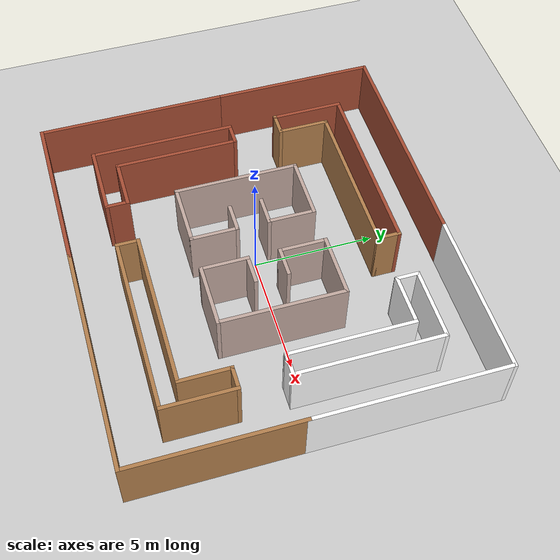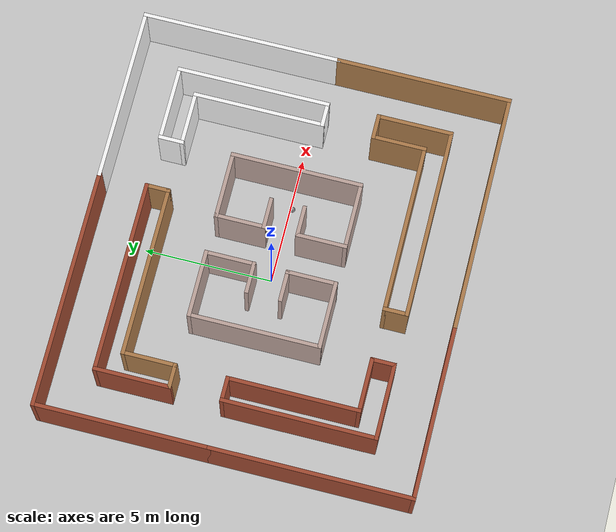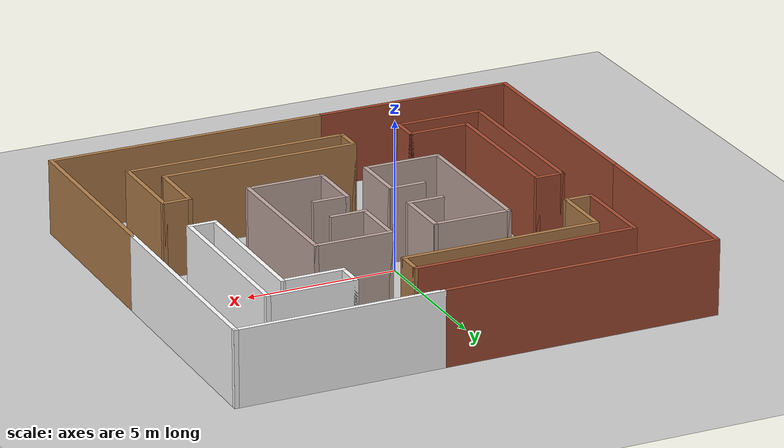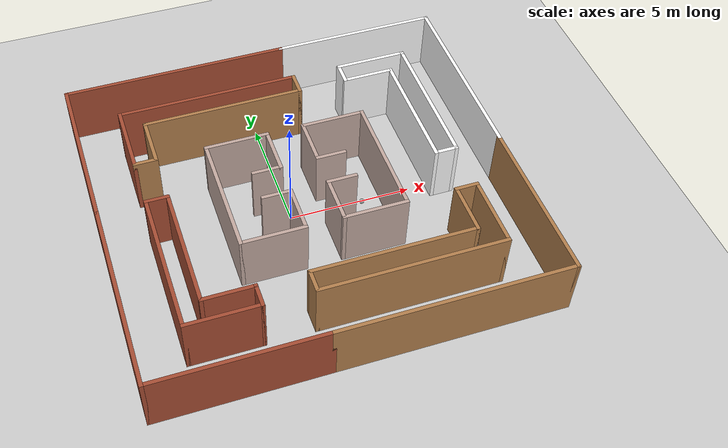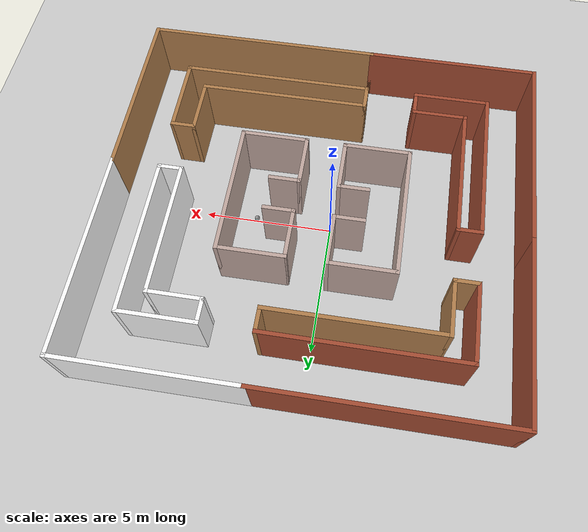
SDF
<sdf version="1.6">
 <world name="default">
  <plugin name="hello" filename="../build/libhello.so"/>
  <plugin name="map_creator" filename="libgazebo_2Dmap_plugin.so">
   <map_size_x>30</map_size_x>
   <map_size_y>30</map_size_y>
   <map_height>5.0</map_height>
   <map_resolution>0.01</map_resolution>
   <filename>mymap</filename>
   <topicName>map2d</topicName>
  </plugin>
  <light name="sun" type="directional">
   <pose>0 0 10 0 -0 0</pose>
   <diffuse>0.8 0.8 0.8 1</diffuse>
   <specular>0.2 0.2 0.2 1</specular>
   <attenuation>
    <range>1000</range>
    <constant>0.9</constant>
    <linear>0.01</linear>
    <quadratic>0.001</quadratic>
   </attenuation>
   <direction>-0.5 0.1 -0.9</direction>
   <spot><inner_angle>0</inner_angle><outer_angle>0</outer_angle><falloff>0</falloff></spot>
  </light>
  <model name="ground_plane">
   <static>1</static>
   <link name="link">
    <collision name="collision">
     <geometry><plane><normal>0 0 1</normal><size>100 100</size></plane></geometry>
     <surface>
      <contact><collide_bitmask>65535</collide_bitmask></contact>
      <friction><ode><mu>100</mu><mu2>50</mu2></ode></friction>
     </surface>
    </collision>
    <visual name="visual">
     <cast_shadows>0</cast_shadows>
     <geometry><plane><normal>0 0 1</normal><size>100 100</size></plane></geometry>
     <material>
      <script><uri>file://media/materials/scripts/gazebo.material</uri><name>Gazebo/Grey</name></script>
     </material>
    </visual>
   </link>
  </model>
  <gravity>0 0 -9.8</gravity>
  <magnetic_field>6e-06 2.3e-05 -4.2e-05</magnetic_field>
  <atmosphere type="adiabatic"/>
  <physics type="ode">
   <max_step_size>0.001</max_step_size>
   <real_time_factor>1</real_time_factor>
   <real_time_update_rate>1000</real_time_update_rate>
  </physics>
  <scene><ambient>0.4 0.4 0.4 1</ambient><background>0.7 0.7 0.7 1</background><shadows>1</shadows></scene>
  <spherical_coordinates>
   <surface_model>EARTH_WGS84</surface_model>
   <latitude_deg>0</latitude_deg>
   <longitude_deg>0</longitude_deg>
   <elevation>0</elevation>
   <heading_deg>0</heading_deg>
  </spherical_coordinates>
  <model name="Office">
   <pose>0.56342 -0.02276 0 0 -0 0</pose>
   <link name="Wall_0">
    <collision name="Wall_0_Collision">
     <geometry><box><size>2.65 0.15 2.5</size></box></geometry>
     <pose>0 0 1.25 0 -0 0</pose>
    </collision>
    <visual name="Wall_0_Visual">
     <pose>0 0 1.25 0 -0 0</pose>
     <geometry><box><size>2.65 0.15 2.5</size></box></geometry>
     <material>
      <script><uri>file://media/materials/scripts/gazebo.material</uri><name>Gazebo/Grey</name></script>
      <ambient>0.760784 0.662745 0.627451 1</ambient>
     </material>
     <meta><layer>0</layer></meta>
    </visual>
    <pose>-2 2.5 0 0 -0 3.14159</pose>
   </link>
   <link name="Wall_10">
    <collision name="Wall_10_Collision">
     <geometry><box><size>2 0.15 2.5</size></box></geometry>
     <pose>0 0 1.25 0 -0 0</pose>
    </collision>
    <visual name="Wall_10_Visual">
     <pose>0 0 1.25 0 -0 0</pose>
     <geometry><box><size>2 0.15 2.5</size></box></geometry>
     <material>
      <script><uri>file://media/materials/scripts/gazebo.material</uri><name>Gazebo/Grey</name></script>
      <ambient>0.760784 0.662745 0.627451 1</ambient>
     </material>
     <meta><layer>0</layer></meta>
    </visual>
    <pose>0.75 1.575 0 0 -0 -1.5708</pose>
   </link>
   <link name="Wall_101">
    <collision name="Wall_101_Collision">
     <geometry><box><size>6.85 0.15 2.5</size></box></geometry>
     <pose>0 0 1.25 0 -0 0</pose>
    </collision>
    <visual name="Wall_101_Visual">
     <pose>0 0 1.25 0 -0 0</pose>
     <geometry><box><size>6.85 0.15 2.5</size></box></geometry>
     <material>
      <script><uri>file://media/materials/scripts/gazebo.material</uri><name>Gazebo/Bricks</name></script>
      <ambient>1 1 1 1</ambient>
     </material>
     <meta><layer>0</layer></meta>
    </visual>
    <pose>-7.95 3.85 0 0 -0 1.5708</pose>
   </link>
   <link name="Wall_102">
    <collision name="Wall_102_Collision">
     <geometry><box><size>9.35054 0.15 2.5</size></box></geometry>
     <pose>0 0 1.25 0 -0 0</pose>
    </collision>
    <visual name="Wall_102_Visual">
     <pose>0 0 1.25 0 -0 0</pose>
     <geometry><box><size>9.35054 0.15 2.5</size></box></geometry>
     <material>
      <script><uri>file://media/materials/scripts/gazebo.material</uri><name>Gazebo/Bricks</name></script>
      <ambient>1 1 1 1</ambient>
     </material>
     <meta><layer>0</layer></meta>
    </visual>
    <pose>-3.35 7.2 0 0 -0 0</pose>
   </link>
   <link name="Wall_12">
    <collision name="Wall_12_Collision">
     <geometry><box><size>2.65 0.15 2.5</size></box></geometry>
     <pose>0 0 1.25 0 -0 0</pose>
    </collision>
    <visual name="Wall_12_Visual">
     <pose>0 0 1.25 0 -0 0</pose>
     <geometry><box><size>2.65 0.15 2.5</size></box></geometry>
     <material>
      <script><uri>file://media/materials/scripts/gazebo.material</uri><name>Gazebo/Grey</name></script>
      <ambient>0.760784 0.662745 0.627451 1</ambient>
     </material>
     <meta><layer>0</layer></meta>
    </visual>
    <pose>2 2.5 0 0 -0 0</pose>
   </link>
   <link name="Wall_13">
    <collision name="Wall_13_Collision">
     <geometry><box><size>5.15 0.15 2.5</size></box></geometry>
     <pose>0 0 1.25 0 -0 0</pose>
    </collision>
    <visual name="Wall_13_Visual">
     <pose>0 0 1.25 0 -0 0</pose>
     <geometry><box><size>5.15 0.15 2.5</size></box></geometry>
     <material>
      <script><uri>file://media/materials/scripts/gazebo.material</uri><name>Gazebo/Grey</name></script>
      <ambient>0.760784 0.662745 0.627451 1</ambient>
     </material>
     <meta><layer>0</layer></meta>
    </visual>
    <pose>3.25 0 0 0 -0 -1.5708</pose>
   </link>
   <link name="Wall_14">
    <collision name="Wall_14_Collision">
     <geometry><box><size>2.65 0.15 2.5</size></box></geometry>
     <pose>0 0 1.25 0 -0 0</pose>
    </collision>
    <visual name="Wall_14_Visual">
     <pose>0 0 1.25 0 -0 0</pose>
     <geometry><box><size>2.65 0.15 2.5</size></box></geometry>
     <material>
      <script><uri>file://media/materials/scripts/gazebo.material</uri><name>Gazebo/Grey</name></script>
      <ambient>0.760784 0.662745 0.627451 1</ambient>
     </material>
     <meta><layer>0</layer></meta>
    </visual>
    <pose>2 -2.5 0 0 -0 3.14159</pose>
   </link>
   <link name="Wall_15">
    <collision name="Wall_15_Collision">
     <geometry><box><size>2 0.15 2.5</size></box></geometry>
     <pose>0 0 1.25 0 -0 0</pose>
    </collision>
    <visual name="Wall_15_Visual">
     <pose>0 0 1.25 0 -0 0</pose>
     <geometry><box><size>2 0.15 2.5</size></box></geometry>
     <material>
      <script><uri>file://media/materials/scripts/gazebo.material</uri><name>Gazebo/Grey</name></script>
      <ambient>0.760784 0.662745 0.627451 1</ambient>
     </material>
     <meta><layer>0</layer></meta>
    </visual>
    <pose>0.75 -1.575 0 0 -0 1.5708</pose>
   </link>
   <link name="Wall_17">
    <collision name="Wall_17_Collision">
     <geometry><box><size>1.25 0.15 2.5</size></box></geometry>
     <pose>0 0 1.25 0 -0 0</pose>
    </collision>
    <visual name="Wall_17_Visual">
     <pose>0 0 1.25 0 -0 0</pose>
     <geometry><box><size>1.25 0.15 2.5</size></box></geometry>
     <material>
      <script><uri>file://media/materials/scripts/gazebo.material</uri><name>Gazebo/Grey</name></script>
      <ambient>0.760784 0.662745 0.627451 1</ambient>
     </material>
     <meta><layer>0</layer></meta>
    </visual>
    <pose>-1.3 0.65 0 0 -0 3.14159</pose>
   </link>
   <link name="Wall_19">
    <collision name="Wall_19_Collision">
     <geometry><box><size>1.25 0.15 2.5</size></box></geometry>
     <pose>0 0 1.25 0 -0 0</pose>
    </collision>
    <visual name="Wall_19_Visual">
     <pose>0 0 1.25 0 -0 0</pose>
     <geometry><box><size>1.25 0.15 2.5</size></box></geometry>
     <material>
      <script><uri>file://media/materials/scripts/gazebo.material</uri><name>Gazebo/Grey</name></script>
      <ambient>0.760784 0.662745 0.627451 1</ambient>
     </material>
     <meta><layer>0</layer></meta>
    </visual>
    <pose>-1.3 -0.65 0 0 -0 3.14159</pose>
   </link>
   <link name="Wall_2">
    <collision name="Wall_2_Collision">
     <geometry><box><size>5.15 0.15 2.5</size></box></geometry>
     <pose>0 0 1.25 0 -0 0</pose>
    </collision>
    <visual name="Wall_2_Visual">
     <pose>0 0 1.25 0 -0 0</pose>
     <geometry><box><size>5.15 0.15 2.5</size></box></geometry>
     <material>
      <script><uri>file://media/materials/scripts/gazebo.material</uri><name>Gazebo/Grey</name></script>
      <ambient>0.760784 0.662745 0.627451 1</ambient>
     </material>
     <meta><layer>0</layer></meta>
    </visual>
    <pose>-3.25 0 0 0 -0 -1.5708</pose>
   </link>
   <link name="Wall_21">
    <collision name="Wall_21_Collision">
     <geometry><box><size>1.25 0.15 2.5</size></box></geometry>
     <pose>0 0 1.25 0 -0 0</pose>
    </collision>
    <visual name="Wall_21_Visual">
     <pose>0 0 1.25 0 -0 0</pose>
     <geometry><box><size>1.25 0.15 2.5</size></box></geometry>
     <material>
      <script><uri>file://media/materials/scripts/gazebo.material</uri><name>Gazebo/Grey</name></script>
      <ambient>0.760784 0.662745 0.627451 1</ambient>
     </material>
     <meta><layer>0</layer></meta>
    </visual>
    <pose>1.3 0.65 0 0 -0 0</pose>
   </link>
   <link name="Wall_23">
    <collision name="Wall_23_Collision">
     <geometry><box><size>1.25 0.15 2.5</size></box></geometry>
     <pose>0 0 1.25 0 -0 0</pose>
    </collision>
    <visual name="Wall_23_Visual">
     <pose>0 0 1.25 0 -0 0</pose>
     <geometry><box><size>1.25 0.15 2.5</size></box></geometry>
     <material>
      <script><uri>file://media/materials/scripts/gazebo.material</uri><name>Gazebo/Grey</name></script>
      <ambient>0.760784 0.662745 0.627451 1</ambient>
     </material>
     <meta><layer>0</layer></meta>
    </visual>
    <pose>1.3 -0.65 0 0 -0 0</pose>
   </link>
   <link name="Wall_26">
    <collision name="Wall_26_Collision">
     <geometry><box><size>2.15 0.15 2.5</size></box></geometry>
     <pose>0 0 1.25 0 -0 0</pose>
    </collision>
    <visual name="Wall_26_Visual">
     <pose>0 0 1.25 0 -0 0</pose>
     <geometry><box><size>2.15 0.15 2.5</size></box></geometry>
     <material>
      <script><uri>file://media/materials/scripts/gazebo.material</uri><name>Gazebo/Bricks</name></script>
      <ambient>1 1 1 1</ambient>
     </material>
     <meta><layer>0</layer></meta>
    </visual>
    <pose>-4.25 -4.5 0 0 -0 3.14159</pose>
   </link>
   <link name="Wall_28">
    <collision name="Wall_28_Collision">
     <geometry><box><size>5.15 0.15 2.5</size></box></geometry>
     <pose>0 0 1.25 0 -0 0</pose>
    </collision>
    <visual name="Wall_28_Visual">
     <pose>0 0 1.25 0 -0 0</pose>
     <geometry><box><size>5.15 0.15 2.5</size></box></geometry>
     <material>
      <script><uri>file://media/materials/scripts/gazebo.material</uri><name>Gazebo/Bricks</name></script>
      <ambient>1 1 1 1</ambient>
     </material>
     <meta><layer>0</layer></meta>
    </visual>
    <pose>-5.25 -2 0 0 -0 1.5708</pose>
   </link>
   <link name="Wall_32">
    <collision name="Wall_32_Collision">
     <geometry><box><size>6.65 0.15 2.5</size></box></geometry>
     <pose>0 0 1.25 0 -0 0</pose>
    </collision>
    <visual name="Wall_32_Visual">
     <pose>0 0 1.25 0 -0 0</pose>
     <geometry><box><size>6.65 0.15 2.5</size></box></geometry>
     <material>
      <script><uri>file://media/materials/scripts/gazebo.material</uri><name>Gazebo/Wood</name></script>
      <ambient>1 1 1 1</ambient>
     </material>
     <meta><layer>0</layer></meta>
    </visual>
    <pose>-2 4.5 0 0 -0 0</pose>
   </link>
   <link name="Wall_34">
    <collision name="Wall_34_Collision">
     <geometry><box><size>2.15 0.15 2.5</size></box></geometry>
     <pose>0 0 1.25 0 -0 0</pose>
    </collision>
    <visual name="Wall_34_Visual">
     <pose>0 0 1.25 0 -0 0</pose>
     <geometry><box><size>2.15 0.15 2.5</size></box></geometry>
     <material>
      <script><uri>file://media/materials/scripts/gazebo.material</uri><name>Gazebo/Wood</name></script>
      <ambient>1 1 1 1</ambient>
     </material>
     <meta><layer>0</layer></meta>
    </visual>
    <pose>-5.25 3.5 0 0 -0 -1.5708</pose>
   </link>
   <link name="Wall_36">
    <collision name="Wall_36_Collision">
     <geometry><box><size>2.15 0.15 2.5</size></box></geometry>
     <pose>0 0 1.25 0 -0 0</pose>
    </collision>
    <visual name="Wall_36_Visual">
     <pose>0 0 1.25 0 -0 0</pose>
     <geometry><box><size>2.15 0.15 2.5</size></box></geometry>
     <material>
      <script><uri>file://media/materials/scripts/gazebo.material</uri><name>Gazebo/Tiles</name></script>
      <ambient>1 1 1 1</ambient>
     </material>
     <meta><layer>0</layer></meta>
    </visual>
    <pose>4.25 4.5 0 0 -0 0</pose>
   </link>
   <link name="Wall_38">
    <collision name="Wall_38_Collision">
     <geometry><box><size>5.15 0.15 2.5</size></box></geometry>
     <pose>0 0 1.25 0 -0 0</pose>
    </collision>
    <visual name="Wall_38_Visual">
     <pose>0 0 1.25 0 -0 0</pose>
     <geometry><box><size>5.15 0.15 2.5</size></box></geometry>
     <material>
      <script><uri>file://media/materials/scripts/gazebo.material</uri><name>Gazebo/Tiles</name></script>
      <ambient>1 1 1 1</ambient>
     </material>
     <meta><layer>0</layer></meta>
    </visual>
    <pose>5.25 2 0 0 -0 -1.5708</pose>
   </link>
   <link name="Wall_4">
    <collision name="Wall_4_Collision">
     <geometry><box><size>2.65 0.15 2.5</size></box></geometry>
     <pose>0 0 1.25 0 -0 0</pose>
    </collision>
    <visual name="Wall_4_Visual">
     <pose>0 0 1.25 0 -0 0</pose>
     <geometry><box><size>2.65 0.15 2.5</size></box></geometry>
     <material>
      <script><uri>file://media/materials/scripts/gazebo.material</uri><name>Gazebo/Grey</name></script>
      <ambient>0.760784 0.662745 0.627451 1</ambient>
     </material>
     <meta><layer>0</layer></meta>
    </visual>
    <pose>-2 -2.5 0 0 -0 0</pose>
   </link>
   <link name="Wall_40">
    <collision name="Wall_40_Collision">
     <geometry><box><size>6.65 0.15 2.5</size></box></geometry>
     <pose>0 0 1.25 0 -0 0</pose>
    </collision>
    <visual name="Wall_40_Visual">
     <pose>0 0 1.25 0 -0 0</pose>
     <geometry><box><size>6.65 0.15 2.5</size></box></geometry>
     <material>
      <script><uri>file://media/materials/scripts/gazebo.material</uri><name>Gazebo/Wood</name></script>
      <ambient>1 1 1 1</ambient>
     </material>
     <meta><layer>0</layer></meta>
    </visual>
    <pose>2 -4.5 0 0 -0 0</pose>
   </link>
   <link name="Wall_42">
    <collision name="Wall_42_Collision">
     <geometry><box><size>2.15 0.15 2.5</size></box></geometry>
     <pose>0 0 1.25 0 -0 0</pose>
    </collision>
    <visual name="Wall_42_Visual">
     <pose>0 0 1.25 0 -0 0</pose>
     <geometry><box><size>2.15 0.15 2.5</size></box></geometry>
     <material>
      <script><uri>file://media/materials/scripts/gazebo.material</uri><name>Gazebo/Wood</name></script>
      <ambient>1 1 1 1</ambient>
     </material>
     <meta><layer>0</layer></meta>
    </visual>
    <pose>5.25 -3.5 0 0 -0 1.5708</pose>
   </link>
   <link name="Wall_44">
    <collision name="Wall_44_Collision">
     <geometry><box><size>1 0.15 2.5</size></box></geometry>
     <pose>0 0 1.25 0 -0 0</pose>
    </collision>
    <visual name="Wall_44_Visual">
     <pose>0 0 1.25 0 -0 0</pose>
     <geometry><box><size>1 0.15 2.5</size></box></geometry>
     <material>
      <script><uri>file://media/materials/scripts/gazebo.material</uri><name>Gazebo/Tiles</name></script>
      <ambient>1 1 1 1</ambient>
     </material>
     <meta><layer>0</layer></meta>
    </visual>
    <pose>5.675 -0.5 0 0 -0 0</pose>
   </link>
   <link name="Wall_46">
    <collision name="Wall_46_Collision">
     <geometry><box><size>1 0.15 2.5</size></box></geometry>
     <pose>0 0 1.25 0 -0 0</pose>
    </collision>
    <visual name="Wall_46_Visual">
     <pose>0 0 1.25 0 -0 0</pose>
     <geometry><box><size>1 0.15 2.5</size></box></geometry>
     <material>
      <script><uri>file://media/materials/scripts/gazebo.material</uri><name>Gazebo/Wood</name></script>
      <ambient>1 1 1 1</ambient>
     </material>
     <meta><layer>0</layer></meta>
    </visual>
    <pose>5.675 -2.5 0 0 -0 0</pose>
   </link>
   <link name="Wall_48">
    <collision name="Wall_48_Collision">
     <geometry><box><size>1 0.15 2.5</size></box></geometry>
     <pose>0 0 1.25 0 -0 0</pose>
    </collision>
    <visual name="Wall_48_Visual">
     <pose>0 0 1.25 0 -0 0</pose>
     <geometry><box><size>1 0.15 2.5</size></box></geometry>
     <material>
      <script><uri>file://media/materials/scripts/gazebo.material</uri><name>Gazebo/Tiles</name></script>
      <ambient>1 1 1 1</ambient>
     </material>
     <meta><layer>0</layer></meta>
    </visual>
    <pose>3.25 4.925 0 0 -0 1.5708</pose>
   </link>
   <link name="Wall_50">
    <collision name="Wall_50_Collision">
     <geometry><box><size>1 0.15 2.5</size></box></geometry>
     <pose>0 0 1.25 0 -0 0</pose>
    </collision>
    <visual name="Wall_50_Visual">
     <pose>0 0 1.25 0 -0 0</pose>
     <geometry><box><size>1 0.15 2.5</size></box></geometry>
     <material>
      <script><uri>file://media/materials/scripts/gazebo.material</uri><name>Gazebo/Wood</name></script>
      <ambient>1 1 1 1</ambient>
     </material>
     <meta><layer>0</layer></meta>
    </visual>
    <pose>1.25 4.925 0 0 -0 1.5708</pose>
   </link>
   <link name="Wall_52">
    <collision name="Wall_52_Collision">
     <geometry><box><size>1 0.15 2.5</size></box></geometry>
     <pose>0 0 1.25 0 -0 0</pose>
    </collision>
    <visual name="Wall_52_Visual">
     <pose>0 0 1.25 0 -0 0</pose>
     <geometry><box><size>1 0.15 2.5</size></box></geometry>
     <material>
      <script><uri>file://media/materials/scripts/gazebo.material</uri><name>Gazebo/Wood</name></script>
      <ambient>1 1 1 1</ambient>
     </material>
     <meta><layer>0</layer></meta>
    </visual>
    <pose>-5.675 2.5 0 0 -0 3.14159</pose>
   </link>
   <link name="Wall_54">
    <collision name="Wall_54_Collision">
     <geometry><box><size>1 0.15 2.5</size></box></geometry>
     <pose>0 0 1.25 0 -0 0</pose>
    </collision>
    <visual name="Wall_54_Visual">
     <pose>0 0 1.25 0 -0 0</pose>
     <geometry><box><size>1 0.15 2.5</size></box></geometry>
     <material>
      <script><uri>file://media/materials/scripts/gazebo.material</uri><name>Gazebo/Bricks</name></script>
      <ambient>1 1 1 1</ambient>
     </material>
     <meta><layer>0</layer></meta>
    </visual>
    <pose>-5.675 0.5 0 0 -0 3.14159</pose>
   </link>
   <link name="Wall_56">
    <collision name="Wall_56_Collision">
     <geometry><box><size>1 0.15 2.5</size></box></geometry>
     <pose>0 0 1.25 0 -0 0</pose>
    </collision>
    <visual name="Wall_56_Visual">
     <pose>0 0 1.25 0 -0 0</pose>
     <geometry><box><size>1 0.15 2.5</size></box></geometry>
     <material>
      <script><uri>file://media/materials/scripts/gazebo.material</uri><name>Gazebo/Bricks</name></script>
      <ambient>1 1 1 1</ambient>
     </material>
     <meta><layer>0</layer></meta>
    </visual>
    <pose>-3.25 -4.925 0 0 -0 -1.5708</pose>
   </link>
   <link name="Wall_58">
    <collision name="Wall_58_Collision">
     <geometry><box><size>1 0.15 2.5</size></box></geometry>
     <pose>0 0 1.25 0 -0 0</pose>
    </collision>
    <visual name="Wall_58_Visual">
     <pose>0 0 1.25 0 -0 0</pose>
     <geometry><box><size>1 0.15 2.5</size></box></geometry>
     <material>
      <script><uri>file://media/materials/scripts/gazebo.material</uri><name>Gazebo/Wood</name></script>
      <ambient>1 1 1 1</ambient>
     </material>
     <meta><layer>0</layer></meta>
    </visual>
    <pose>-1.25 -4.925 0 0 -0 -1.5708</pose>
   </link>
   <link name="Wall_6">
    <collision name="Wall_6_Collision">
     <geometry><box><size>2 0.15 2.5</size></box></geometry>
     <pose>0 0 1.25 0 -0 0</pose>
    </collision>
    <visual name="Wall_6_Visual">
     <pose>0 0 1.25 0 -0 0</pose>
     <geometry><box><size>2 0.15 2.5</size></box></geometry>
     <material>
      <script><uri>file://media/materials/scripts/gazebo.material</uri><name>Gazebo/Grey</name></script>
      <ambient>0.760784 0.662745 0.627451 1</ambient>
     </material>
     <meta><layer>0</layer></meta>
    </visual>
    <pose>-0.75 1.575 0 0 -0 -1.5708</pose>
   </link>
   <link name="Wall_60">
    <collision name="Wall_60_Collision">
     <geometry><box><size>7.5 0.15 2.5</size></box></geometry>
     <pose>0 0 1.25 0 -0 0</pose>
    </collision>
    <visual name="Wall_60_Visual">
     <pose>0 0 1.25 0 -0 0</pose>
     <geometry><box><size>7.5 0.15 2.5</size></box></geometry>
     <material>
      <script><uri>file://media/materials/scripts/gazebo.material</uri><name>Gazebo/Wood</name></script>
      <ambient>1 1 1 1</ambient>
     </material>
     <meta><layer>0</layer></meta>
    </visual>
    <pose>2.425 -5.35 0 0 -0 0</pose>
   </link>
   <link name="Wall_61">
    <collision name="Wall_61_Collision">
     <geometry><box><size>3 0.15 2.5</size></box></geometry>
     <pose>0 0 1.25 0 -0 0</pose>
    </collision>
    <visual name="Wall_61_Visual">
     <pose>0 0 1.25 0 -0 0</pose>
     <geometry><box><size>3 0.15 2.5</size></box></geometry>
     <material>
      <script><uri>file://media/materials/scripts/gazebo.material</uri><name>Gazebo/Wood</name></script>
      <ambient>1 1 1 1</ambient>
     </material>
     <meta><layer>0</layer></meta>
    </visual>
    <pose>6.1 -3.925 0 0 -0 1.5708</pose>
   </link>
   <link name="Wall_63">
    <collision name="Wall_63_Collision">
     <geometry><box><size>6 0.15 2.5</size></box></geometry>
     <pose>0 0 1.25 0 -0 0</pose>
    </collision>
    <visual name="Wall_63_Visual">
     <pose>0 0 1.25 0 -0 0</pose>
     <geometry><box><size>6 0.15 2.5</size></box></geometry>
     <material>
      <script><uri>file://media/materials/scripts/gazebo.material</uri><name>Gazebo/Bricks</name></script>
      <ambient>1 1 1 1</ambient>
     </material>
     <meta><layer>0</layer></meta>
    </visual>
    <pose>-6.1 -2.425 0 0 -0 -1.5708</pose>
   </link>
   <link name="Wall_64">
    <collision name="Wall_64_Collision">
     <geometry><box><size>3 0.15 2.5</size></box></geometry>
     <pose>0 0 1.25 0 -0 0</pose>
    </collision>
    <visual name="Wall_64_Visual">
     <pose>0 0 1.25 0 -0 0</pose>
     <geometry><box><size>3 0.15 2.5</size></box></geometry>
     <material>
      <script><uri>file://media/materials/scripts/gazebo.material</uri><name>Gazebo/Bricks</name></script>
      <ambient>1 1 1 1</ambient>
     </material>
     <meta><layer>0</layer></meta>
    </visual>
    <pose>-4.675 -5.35 0 0 -0 0</pose>
   </link>
   <link name="Wall_66">
    <collision name="Wall_66_Collision">
     <geometry><box><size>6 0.15 2.5</size></box></geometry>
     <pose>0 0 1.25 0 -0 0</pose>
    </collision>
    <visual name="Wall_66_Visual">
     <pose>0 0 1.25 0 -0 0</pose>
     <geometry><box><size>6 0.15 2.5</size></box></geometry>
     <material>
      <script><uri>file://media/materials/scripts/gazebo.material</uri><name>Gazebo/Tiles</name></script>
      <ambient>1 1 1 1</ambient>
     </material>
     <meta><layer>0</layer></meta>
    </visual>
    <pose>6.1 2.425 0 0 -0 1.5708</pose>
   </link>
   <link name="Wall_67">
    <collision name="Wall_67_Collision">
     <geometry><box><size>3 0.15 2.5</size></box></geometry>
     <pose>0 0 1.25 0 -0 0</pose>
    </collision>
    <visual name="Wall_67_Visual">
     <pose>0 0 1.25 0 -0 0</pose>
     <geometry><box><size>3 0.15 2.5</size></box></geometry>
     <material>
      <script><uri>file://media/materials/scripts/gazebo.material</uri><name>Gazebo/Tiles</name></script>
      <ambient>1 1 1 1</ambient>
     </material>
     <meta><layer>0</layer></meta>
    </visual>
    <pose>4.675 5.35 0 0 -0 3.14159</pose>
   </link>
   <link name="Wall_69">
    <collision name="Wall_69_Collision">
     <geometry><box><size>7.5 0.15 2.5</size></box></geometry>
     <pose>0 0 1.25 0 -0 0</pose>
    </collision>
    <visual name="Wall_69_Visual">
     <pose>0 0 1.25 0 -0 0</pose>
     <geometry><box><size>7.5 0.15 2.5</size></box></geometry>
     <material>
      <script><uri>file://media/materials/scripts/gazebo.material</uri><name>Gazebo/Bricks</name></script>
      <ambient>1 1 1 1</ambient>
     </material>
     <meta><layer>0</layer></meta>
    </visual>
    <pose>-2.425 5.35 0 0 -0 3.14159</pose>
   </link>
   <link name="Wall_70">
    <collision name="Wall_70_Collision">
     <geometry><box><size>3 0.15 2.5</size></box></geometry>
     <pose>0 0 1.25 0 -0 0</pose>
    </collision>
    <visual name="Wall_70_Visual">
     <pose>0 0 1.25 0 -0 0</pose>
     <geometry><box><size>3 0.15 2.5</size></box></geometry>
     <material>
      <script><uri>file://media/materials/scripts/gazebo.material</uri><name>Gazebo/Bricks</name></script>
      <ambient>1 1 1 1</ambient>
     </material>
     <meta><layer>0</layer></meta>
    </visual>
    <pose>-6.1 3.925 0 0 -0 -1.5708</pose>
   </link>
   <link name="Wall_76">
    <collision name="Wall_76_Collision">
     <geometry><box><size>6.85075 0.15 2.5</size></box></geometry>
     <pose>0 0 1.25 0 -0 0</pose>
    </collision>
    <visual name="Wall_76_Visual">
     <pose>0 0 1.25 0 -0 0</pose>
     <geometry><box><size>6.85075 0.15 2.5</size></box></geometry>
     <material>
      <script><uri>file://media/materials/scripts/gazebo.material</uri><name>Gazebo/Tiles</name></script>
      <ambient>1 1 1 1</ambient>
     </material>
     <meta><layer>0</layer></meta>
    </visual>
    <pose>4.6 7.2 0 0 -0 3.14159</pose>
   </link>
   <link name="Wall_8">
    <collision name="Wall_8_Collision">
     <geometry><box><size>2 0.15 2.5</size></box></geometry>
     <pose>0 0 1.25 0 -0 0</pose>
    </collision>
    <visual name="Wall_8_Visual">
     <pose>0 0 1.25 0 -0 0</pose>
     <geometry><box><size>2 0.15 2.5</size></box></geometry>
     <material>
      <script><uri>file://media/materials/scripts/gazebo.material</uri><name>Gazebo/Grey</name></script>
      <ambient>0.760784 0.662745 0.627451 1</ambient>
     </material>
     <meta><layer>0</layer></meta>
    </visual>
    <pose>-0.75 -1.575 0 0 -0 1.5708</pose>
   </link>
   <link name="Wall_88">
    <collision name="Wall_88_Collision">
     <geometry><box><size>7.85 0.15 2.5</size></box></geometry>
     <pose>0 0 1.25 0 -0 0</pose>
    </collision>
    <visual name="Wall_88_Visual">
     <pose>0 0 1.25 0 -0 0</pose>
     <geometry><box><size>7.85 0.15 2.5</size></box></geometry>
     <material>
      <script><uri>file://media/materials/scripts/gazebo.material</uri><name>Gazebo/Tiles</name></script>
      <ambient>1 1 1 1</ambient>
     </material>
     <meta><layer>0</layer></meta>
    </visual>
    <pose>7.95 3.35 0 0 -0 1.5708</pose>
   </link>
   <link name="Wall_93">
    <collision name="Wall_93_Collision">
     <geometry><box><size>9.35 0.15 2.5</size></box></geometry>
     <pose>0 0 1.25 0 -0 0</pose>
    </collision>
    <visual name="Wall_93_Visual">
     <pose>0 0 1.25 0 -0 0</pose>
     <geometry><box><size>9.35 0.15 2.5</size></box></geometry>
     <material>
      <script><uri>file://media/materials/scripts/gazebo.material</uri><name>Gazebo/Wood</name></script>
      <ambient>1 1 1 1</ambient>
     </material>
     <meta><layer>0</layer></meta>
    </visual>
    <pose>3.35 -7.2 0 0 -0 0</pose>
   </link>
   <link name="Wall_94">
    <collision name="Wall_94_Collision">
     <geometry><box><size>6.85 0.15 2.5</size></box></geometry>
     <pose>0 0 1.25 0 -0 0</pose>
    </collision>
    <visual name="Wall_94_Visual">
     <pose>0 0 1.25 0 -0 0</pose>
     <geometry><box><size>6.85 0.15 2.5</size></box></geometry>
     <material>
      <script><uri>file://media/materials/scripts/gazebo.material</uri><name>Gazebo/Wood</name></script>
      <ambient>1 1 1 1</ambient>
     </material>
     <meta><layer>0</layer></meta>
    </visual>
    <pose>7.95 -3.85 0 0 -0 1.5708</pose>
   </link>
   <link name="Wall_96">
    <collision name="Wall_96_Collision">
     <geometry><box><size>7.85 0.15 2.5</size></box></geometry>
     <pose>0 0 1.25 0 -0 0</pose>
    </collision>
    <visual name="Wall_96_Visual">
     <pose>0 0 1.25 0 -0 0</pose>
     <geometry><box><size>7.85 0.15 2.5</size></box></geometry>
     <material>
      <script><uri>file://media/materials/scripts/gazebo.material</uri><name>Gazebo/Bricks</name></script>
      <ambient>1 1 1 1</ambient>
     </material>
     <meta><layer>0</layer></meta>
    </visual>
    <pose>-7.95 -3.35 0 0 -0 -1.5708</pose>
   </link>
   <link name="Wall_99">
    <collision name="Wall_99_Collision">
     <geometry><box><size>6.85075 0.15 2.5</size></box></geometry>
     <pose>0 0 1.25 0 -0 0</pose>
    </collision>
    <visual name="Wall_99_Visual">
     <pose>0 0 1.25 0 -0 0</pose>
     <geometry><box><size>6.85075 0.15 2.5</size></box></geometry>
     <material>
      <script><uri>file://media/materials/scripts/gazebo.material</uri><name>Gazebo/Bricks</name></script>
      <ambient>1 1 1 1</ambient>
     </material>
     <meta><layer>0</layer></meta>
    </visual>
    <pose>-4.6 -7.2 0 0 -0 0</pose>
   </link>
   <static>1</static>
  </model>
  <model name="my_ball">
   <link name="link">
    <inertial>
     <mass>1</mass>
     <inertia><ixx>0.1</ixx><ixy>0</ixy><ixz>0</ixz><iyy>0.1</iyy><iyz>0</iyz><izz>0.1</izz></inertia>
    </inertial>
    <visual name="visual">
     <geometry><sphere><radius>0.1</radius></sphere></geometry>
     <material>
      <script><name>Gazebo/Grey</name><uri>file://media/materials/scripts/gazebo.material</uri></script>
      <shader type="pixel"><normal_map>__default__</normal_map></shader>
      <ambient>1 1 1 1</ambient>
      <diffuse>1 1 1 1</diffuse>
      <specular>1 1 1 1</specular>
      <emissive>1 1 1 1</emissive>
     </material>
    </visual>
    <collision name="collision">
     <geometry><sphere><radius>0.1</radius></sphere></geometry>
     <surface>
      <friction>
       <ode><mu>1</mu><mu2>1</mu2><fdir1>0 0 0</fdir1><slip1>0</slip1><slip2>0</slip2></ode>
       <torsional>
        <coefficient>1</coefficient>
        <patch_radius>0</patch_radius>
        <surface_radius>0</surface_radius>
        <use_patch_radius>1</use_patch_radius>
        <ode><slip>0</slip></ode>
       </torsional>
      </friction>
      <bounce><restitution_coefficient>0</restitution_coefficient><threshold>1e+06</threshold></bounce>
      <contact>
       <collide_without_contact>0</collide_without_contact>
       <collide_without_contact_bitmask>1</collide_without_contact_bitmask>
       <collide_bitmask>1</collide_bitmask>
       <ode>
        <soft_cfm>0</soft_cfm>
        <soft_erp>0.2</soft_erp>
        <kp>1e+13</kp>
        <kd>1</kd>
        <max_vel>0.01</max_vel>
        <min_depth>0</min_depth>
       </ode>
       <bullet>
        <split_impulse>1</split_impulse>
        <split_impulse_penetration_threshold>-0.01</split_impulse_penetration_threshold>
        <soft_cfm>0</soft_cfm>
        <soft_erp>0.2</soft_erp>
        <kp>1e+13</kp>
        <kd>1</kd>
       </bullet>
      </contact>
     </surface>
    </collision>
   </link>
   <static>0</static>
   <pose>2.97915 -0.093563 0.1 0 -0 0</pose>
  </model>
 </world>
</sdf>
